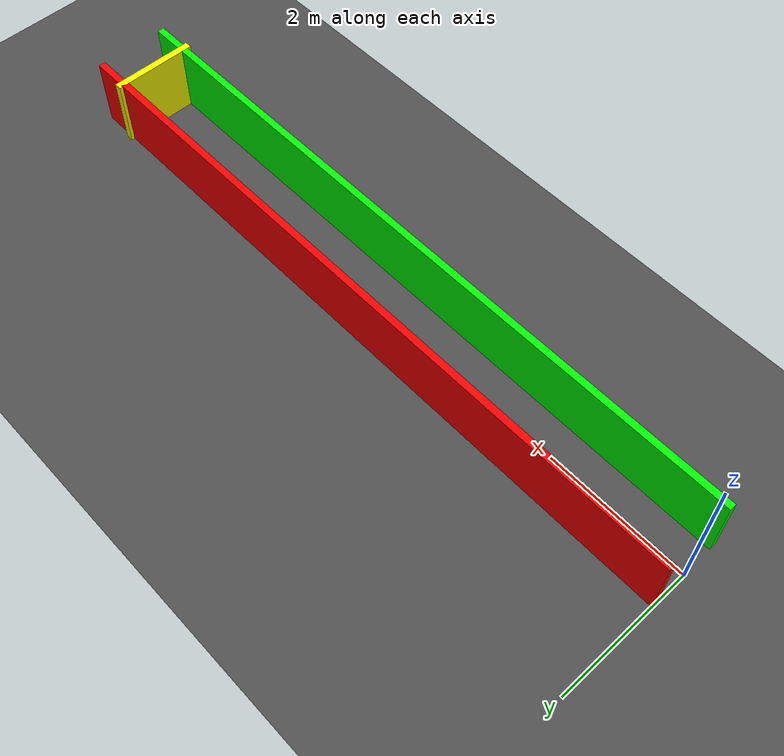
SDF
<?xml version="1.0"?>
<sdf version="1.6">
  <world name="test_corridor">
    <physics type="ode">
      <real_time_update_rate>1000.0</real_time_update_rate>
      <max_step_size>0.001</max_step_size>
    </physics>

    <light name="sun" type="directional">
      <cast_shadows>true</cast_shadows>
      <pose>0 0 10 0 0 0</pose>
      <diffuse>0.8 0.8 0.8 1</diffuse>
      <specular>0.2 0.2 0.2 1</specular>
      <direction>-0.5 0.1 -0.9</direction>
    </light>

    <scene>
      <ambient>0.6 0.6 0.6 1</ambient>
      <background>0.7 0.7 0.7 1</background>
    </scene>

    <model name="ground_plane">
      <static>true</static>
      <link name="link">
        <collision name="collision">
          <geometry>
            <plane>
              <normal>0 0 1</normal>
              <size>100 100</size>
            </plane>
          </geometry>
        </collision>
        <visual name="visual">
          <geometry>
            <plane>
              <normal>0 0 1</normal>
              <size>100 100</size>
            </plane>
          </geometry>
          <material>
            <ambient>0.3 0.3 0.3 1</ambient>
            <diffuse>0.3 0.3 0.3 1</diffuse>
          </material>
        </visual>
      </link>
    </model>

    <model name="left_wall">
      <static>true</static>
      <pose>5 0.5 0.5 0 0 0</pose>
      <link name="link">
        <collision name="collision">
          <geometry>
            <box>
              <size>10 0.1 1</size>
            </box>
          </geometry>
        </collision>
        <visual name="visual">
          <geometry>
            <box>
              <size>10 0.1 1</size>
            </box>
          </geometry>
          <material>
            <ambient>1 0 0 1</ambient>
            <diffuse>1 0 0 1</diffuse>
          </material>
        </visual>
      </link>
    </model>

    <model name="right_wall">
      <static>true</static>
      <pose>5 -0.5 0.5 0 0 0</pose>
      <link name="link">
        <collision name="collision">
          <geometry>
            <box>
              <size>10 0.1 1</size>
            </box>
          </geometry>
        </collision>
        <visual name="visual">
          <geometry>
            <box>
              <size>10 0.1 1</size>
            </box>
          </geometry>
          <material>
            <ambient>0 1 0 1</ambient>
            <diffuse>0 1 0 1</diffuse>
          </material>
        </visual>
      </link>
    </model>

    <model name="end_wall">
      <static>true</static>
      <pose>9.5 0 0.5 0 0 0</pose>
      <link name="link">
        <collision name="collision">
          <geometry>
            <box>
              <size>0.1 1.2 1</size>
            </box>
          </geometry>
        </collision>
        <visual name="visual">
          <geometry>
            <box>
              <size>0.1 1.2 1</size>
            </box>
          </geometry>
          <material>
            <ambient>1 1 0 1</ambient>
            <diffuse>1 1 0 1</diffuse>
          </material>
        </visual>
      </link>
    </model>

  </world>
</sdf>
